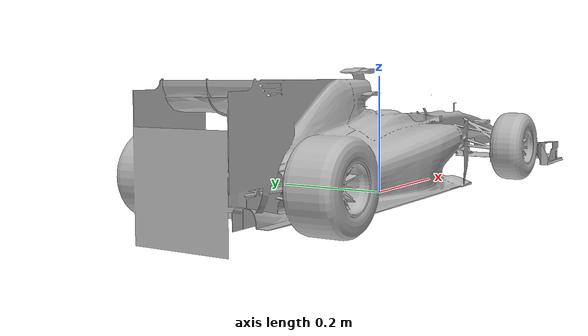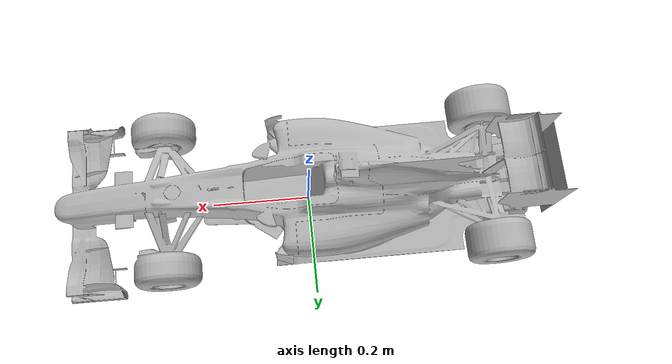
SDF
<?xml version="1.0" ?>
<sdf version="1.6">
<model name="f1_renault_cam">
    <pose>0 0 0 0 0 0</pose>
    <static>false</static>

    <include merge="true">
        <uri>model://f1_renault</uri>
        <name>f1_renault</name>
    </include>

    <link name="hd_camera_link">
        <pose>0.45000 0.00000 0.1250000 0.000000 -0.000000 0.0000000</pose>
        <inertial>
            <mass>0.005</mass>
            <inertia>
                <ixx>8.33e-06</ixx>
                <ixy>0</ixy>
                <ixz>0</ixz>
                <iyy>8.33e-06</iyy>
                <iyz>0</iyz>
                <izz>8.33e-06</izz>
            </inertia>
        </inertial>
        <sensor name="camera" type="camera">
            <always_on>1</always_on>
            <update_rate>20</update_rate>
            <topic>/model/f1/camera/image</topic>
            <camera name="camera">
                <camera_info_topic>/model/f1/camera/info</camera_info_topic>
                <horizontal_fov>1.0472</horizontal_fov>
                <lens>
                    <intrinsics>
                        <!-- fx = fy = width / ( 2 * tan (hfov / 2 ) ) -->
                        <fx>1108.5</fx>
                        <fy>1108.5</fy>
                        <!-- cx = ( width + 1 ) / 2 -->
                        <cx>640.5</cx>
                        <!-- cy = ( height + 1 ) / 2 -->
                        <cy>480.5</cy>
                        <s>0</s>
                    </intrinsics>
                </lens>
                <image>
                    <width>1280</width>
                    <height>960</height>
                    <format>R8G8B8</format>
                </image>
                <clip>
                    <near>0.01</near>
                    <far>300</far>
                </clip>
                <noise>
                    <type>gaussian</type>
                    <mean>0</mean>
                    <stddev>0.007</stddev>
                </noise>
            </camera>
        </sensor>
    </link>

    <joint type="fixed" name="camera_joint">
        <parent>f1_link</parent>
        <child>hd_camera_link</child>
    </joint>

  </model>
</sdf>

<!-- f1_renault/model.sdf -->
<sdf version="1.6">
    <model name="f1_renault">
        <pose>0 0 0 0 0 0</pose>
        <static>false</static>
        <link name="f1_link">
            <pose>0 0 0 0 0 0</pose>
            <inertial>
                <mass>10</mass>
                <inertia>
                    <ixx>1</ixx>
                    <ixy>0.0</ixy>
                    <iyy>1</iyy>
                    <ixz>0.0</ixz>
                    <iyz>0.0</iyz>
                    <izz>1.0</izz>
                </inertia>
            </inertial>
            <collision name="collision">
                <geometry>
                    <mesh>
                    <uri>model://f1_renault/Renault/Car.obj</uri>
                    <scale>0.2 0.2 0.2</scale>
                    </mesh>
                </geometry>
            </collision>
            <visual name="visual">
                <geometry>
                    <mesh>
                        <uri>model://f1_renault/Renault/Car.obj</uri>
                        <scale>0.2 0.2 0.2</scale>
                    </mesh>
                </geometry>
            </visual>
        </link>

      <plugin filename="gz-sim-odometry-publisher-system" name="gz::sim::systems::OdometryPublisher">
            <odom_topic>/model/f1/odom</odom_topic>
            <dimensions>3</dimensions>
            <odom_publish_frequency>50</odom_publish_frequency>
      </plugin>

      <plugin filename="gz-sim-velocity-control-system" name="gz::sim::systems::VelocityControl">
            <topic>/model/f1/cmd_vel</topic>
      </plugin>
    </model>
</sdf>
